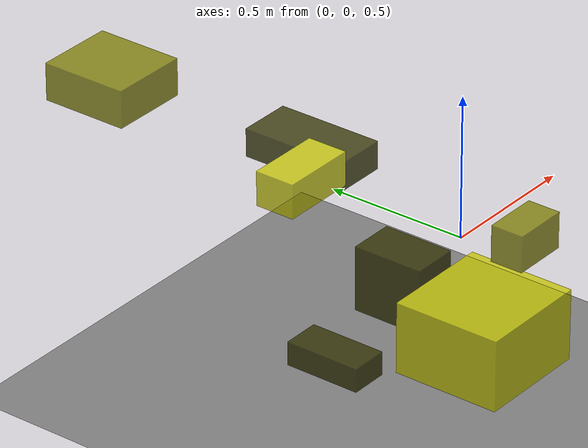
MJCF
<?xml version="1.0"?>
<mujoco model="obstacle_scene">
  <compiler angle="radian" coordinate="local"/>
  <option timestep="0.001" gravity="0 0 -9.81"/>

  <asset>
    <material name="obstacle_mat" rgba="0.8 0.8 0.0 0.8"/>
    <material name="ground_mat" rgba="0.5 0.5 0.5 1"/>
  </asset>

  <worldbody>
    <!-- Ground plane -->
    <geom name="ground" type="plane" size="3 3 0.1" material="ground_mat"/>

    <!-- Obstacles -->
    <body name="obstacle_0" pos="-0.291675 0.007041 0.480135">
      <geom name="obs_0" type="box" size="0.079770 0.123363 0.112646" rgba="0.2 0.2 0.0 0.8"/>
    </body>
    <body name="obstacle_1" pos="-0.667526 0.843218 1.067869">
      <geom name="obs_1" type="box" size="0.134816 0.149098 0.063982" rgba="0.5 0.5 0.0 0.8"/>
    </body>
    <body name="obstacle_2" pos="-0.308382 -0.313795 0.424330">
      <geom name="obs_2" type="box" size="0.194448 0.186314 0.123543" rgba="0.8 0.8 0.0 0.8"/>
    </body>
    <body name="obstacle_3" pos="-0.860586 -0.166668 0.539268">
      <geom name="obs_3" type="box" size="0.063886 0.128818 0.039948" rgba="0.2 0.2 0.0 0.8"/>
    </body>
    <body name="obstacle_4" pos="-0.137353 -0.340882 0.688285">
      <geom name="obs_4" type="box" size="0.096265 0.057636 0.063473" rgba="0.5 0.5 0.0 0.8"/>
    </body>
    <body name="obstacle_5" pos="-0.767995 0.031719 1.044047">
      <geom name="obs_5" type="box" size="0.127708 0.067604 0.058106" rgba="0.8 0.8 0.0 0.8"/>
    </body>
    <body name="obstacle_6" pos="-0.459866 0.230858 0.941600">
      <geom name="obs_6" type="box" size="0.091171 0.182270 0.048085" rgba="0.2 0.2 0.0 0.8"/>
    </body>
  </worldbody>
</mujoco>
